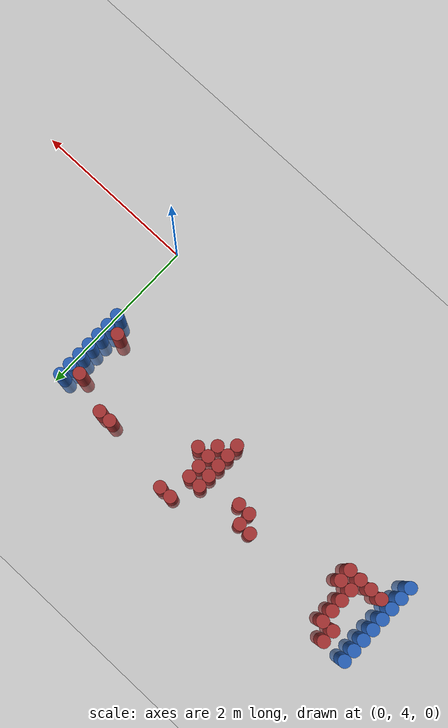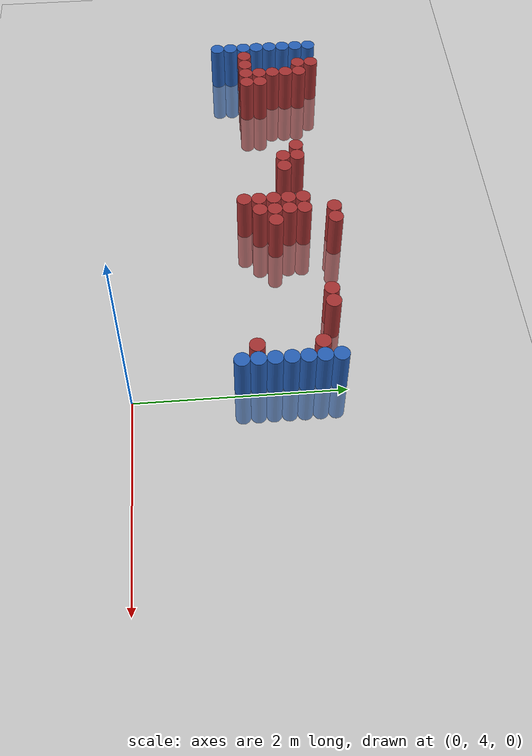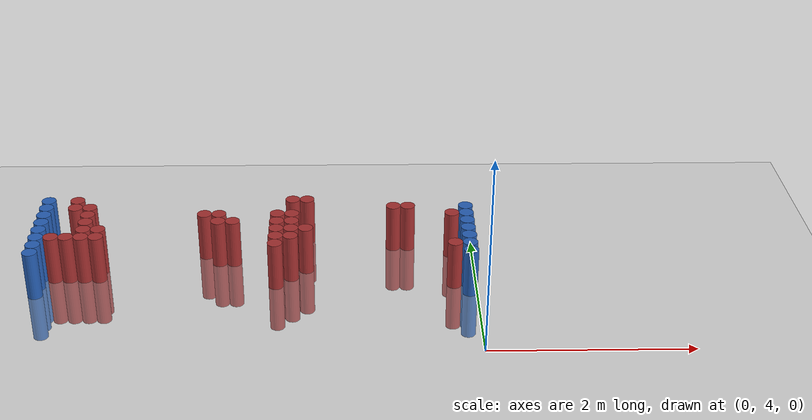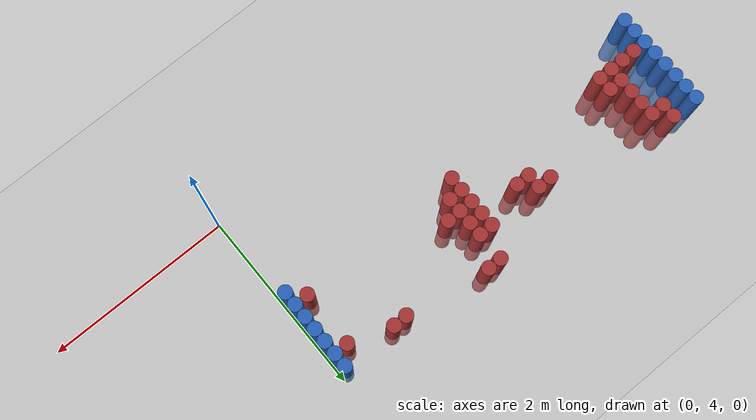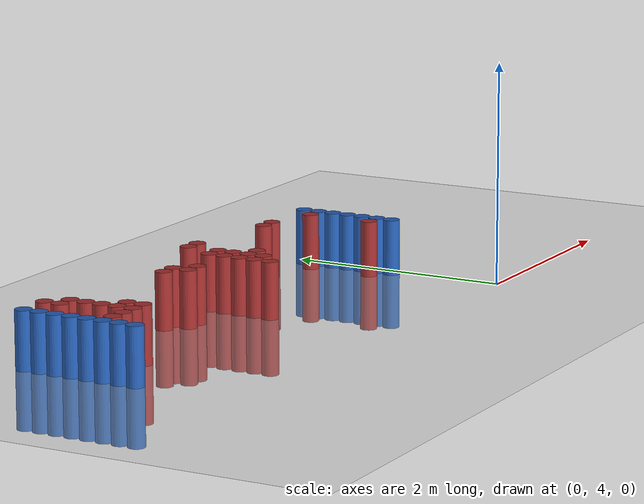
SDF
<sdf version="1.6">
 <world name="default">
  <model name="ground_plane">
   <static>1</static>
   <link name="link">
    <collision name="collision">
     <geometry><plane><normal>0 0 1</normal><size>100 100</size></plane></geometry>
     <surface><friction><ode><mu>100</mu><mu2>50</mu2></ode></friction></surface>
    </collision>
    <visual name="visual">
     <cast_shadows>0</cast_shadows>
     <geometry><plane><normal>0 0 1</normal><size>100 100</size></plane></geometry>
     <material>
      <script><uri>file://media/materials/scripts/gazebo.material</uri><name>Gazebo/Grey</name></script>
     </material>
    </visual>
   </link>
  </model>
  <model name="unit_cylinder_94">
   <static>1</static>
   <pose>-0.075000 5.025000 0.000000 0.000000 0.000000 0.000000</pose>
   <link name="link">
    <inertial>
     <mass>1</mass>
     <inertia><ixx>0.145833</ixx><ixy>0</ixy><ixz>0</ixz><iyy>0.145833</iyy><iyz>0</iyz><izz>0.125</izz></inertia>
    </inertial>
    <collision name="collision">
     <geometry><cylinder><radius>0.075000</radius><length>1</length></cylinder></geometry>
    </collision>
    <visual name="visual">
     <geometry><cylinder><radius>0.075000</radius><length>1</length></cylinder></geometry>
     <material>
      <ambient>0.152000 0.379000 0.720000 1</ambient>
      <diffuse>0.152000 0.379000 0.720000 1</diffuse>
     </material>
     <material>
      <script><name>Gazebo/Grey</name><uri>file://media/materials/scripts/gazebo.material</uri></script>
     </material>
    </visual>
   </link>
  </model>
  <model name="unit_cylinder_95">
   <static>1</static>
   <pose>-4.425000 5.025000 0.000000 0.000000 0.000000 0.000000</pose>
   <link name="link">
    <inertial>
     <mass>1</mass>
     <inertia><ixx>0.145833</ixx><ixy>0</ixy><ixz>0</ixz><iyy>0.145833</iyy><iyz>0</iyz><izz>0.125</izz></inertia>
    </inertial>
    <collision name="collision">
     <geometry><cylinder><radius>0.075000</radius><length>1</length></cylinder></geometry>
    </collision>
    <visual name="visual">
     <geometry><cylinder><radius>0.075000</radius><length>1</length></cylinder></geometry>
     <material>
      <ambient>0.152000 0.379000 0.720000 1</ambient>
      <diffuse>0.152000 0.379000 0.720000 1</diffuse>
     </material>
     <material>
      <script><name>Gazebo/Grey</name><uri>file://media/materials/scripts/gazebo.material</uri></script>
     </material>
    </visual>
   </link>
  </model>
  <model name="unit_cylinder_96">
   <static>1</static>
   <pose>-4.425000 5.175000 0.000000 0.000000 0.000000 0.000000</pose>
   <link name="link">
    <inertial>
     <mass>1</mass>
     <inertia><ixx>0.145833</ixx><ixy>0</ixy><ixz>0</ixz><iyy>0.145833</iyy><iyz>0</iyz><izz>0.125</izz></inertia>
    </inertial>
    <collision name="collision">
     <geometry><cylinder><radius>0.075000</radius><length>1</length></cylinder></geometry>
    </collision>
    <visual name="visual">
     <geometry><cylinder><radius>0.075000</radius><length>1</length></cylinder></geometry>
     <material>
      <ambient>0.152000 0.379000 0.720000 1</ambient>
      <diffuse>0.152000 0.379000 0.720000 1</diffuse>
     </material>
     <material>
      <script><name>Gazebo/Grey</name><uri>file://media/materials/scripts/gazebo.material</uri></script>
     </material>
    </visual>
   </link>
  </model>
  <model name="unit_cylinder_97">
   <static>1</static>
   <pose>-4.425000 5.325000 0.000000 0.000000 0.000000 0.000000</pose>
   <link name="link">
    <inertial>
     <mass>1</mass>
     <inertia><ixx>0.145833</ixx><ixy>0</ixy><ixz>0</ixz><iyy>0.145833</iyy><iyz>0</iyz><izz>0.125</izz></inertia>
    </inertial>
    <collision name="collision">
     <geometry><cylinder><radius>0.075000</radius><length>1</length></cylinder></geometry>
    </collision>
    <visual name="visual">
     <geometry><cylinder><radius>0.075000</radius><length>1</length></cylinder></geometry>
     <material>
      <ambient>0.152000 0.379000 0.720000 1</ambient>
      <diffuse>0.152000 0.379000 0.720000 1</diffuse>
     </material>
     <material>
      <script><name>Gazebo/Grey</name><uri>file://media/materials/scripts/gazebo.material</uri></script>
     </material>
    </visual>
   </link>
  </model>
  <model name="unit_cylinder_98">
   <static>1</static>
   <pose>-4.425000 5.475000 0.000000 0.000000 0.000000 0.000000</pose>
   <link name="link">
    <inertial>
     <mass>1</mass>
     <inertia><ixx>0.145833</ixx><ixy>0</ixy><ixz>0</ixz><iyy>0.145833</iyy><iyz>0</iyz><izz>0.125</izz></inertia>
    </inertial>
    <collision name="collision">
     <geometry><cylinder><radius>0.075000</radius><length>1</length></cylinder></geometry>
    </collision>
    <visual name="visual">
     <geometry><cylinder><radius>0.075000</radius><length>1</length></cylinder></geometry>
     <material>
      <ambient>0.152000 0.379000 0.720000 1</ambient>
      <diffuse>0.152000 0.379000 0.720000 1</diffuse>
     </material>
     <material>
      <script><name>Gazebo/Grey</name><uri>file://media/materials/scripts/gazebo.material</uri></script>
     </material>
    </visual>
   </link>
  </model>
  <model name="unit_cylinder_99">
   <static>1</static>
   <pose>-4.425000 5.625000 0.000000 0.000000 0.000000 0.000000</pose>
   <link name="link">
    <inertial>
     <mass>1</mass>
     <inertia><ixx>0.145833</ixx><ixy>0</ixy><ixz>0</ixz><iyy>0.145833</iyy><iyz>0</iyz><izz>0.125</izz></inertia>
    </inertial>
    <collision name="collision">
     <geometry><cylinder><radius>0.075000</radius><length>1</length></cylinder></geometry>
    </collision>
    <visual name="visual">
     <geometry><cylinder><radius>0.075000</radius><length>1</length></cylinder></geometry>
     <material>
      <ambient>0.152000 0.379000 0.720000 1</ambient>
      <diffuse>0.152000 0.379000 0.720000 1</diffuse>
     </material>
     <material>
      <script><name>Gazebo/Grey</name><uri>file://media/materials/scripts/gazebo.material</uri></script>
     </material>
    </visual>
   </link>
  </model>
  <model name="unit_cylinder_100">
   <static>1</static>
   <pose>-4.425000 5.775000 0.000000 0.000000 0.000000 0.000000</pose>
   <link name="link">
    <inertial>
     <mass>1</mass>
     <inertia><ixx>0.145833</ixx><ixy>0</ixy><ixz>0</ixz><iyy>0.145833</iyy><iyz>0</iyz><izz>0.125</izz></inertia>
    </inertial>
    <collision name="collision">
     <geometry><cylinder><radius>0.075000</radius><length>1</length></cylinder></geometry>
    </collision>
    <visual name="visual">
     <geometry><cylinder><radius>0.075000</radius><length>1</length></cylinder></geometry>
     <material>
      <ambient>0.152000 0.379000 0.720000 1</ambient>
      <diffuse>0.152000 0.379000 0.720000 1</diffuse>
     </material>
     <material>
      <script><name>Gazebo/Grey</name><uri>file://media/materials/scripts/gazebo.material</uri></script>
     </material>
    </visual>
   </link>
  </model>
  <model name="unit_cylinder_101">
   <static>1</static>
   <pose>-4.425000 5.925000 0.000000 0.000000 0.000000 0.000000</pose>
   <link name="link">
    <inertial>
     <mass>1</mass>
     <inertia><ixx>0.145833</ixx><ixy>0</ixy><ixz>0</ixz><iyy>0.145833</iyy><iyz>0</iyz><izz>0.125</izz></inertia>
    </inertial>
    <collision name="collision">
     <geometry><cylinder><radius>0.075000</radius><length>1</length></cylinder></geometry>
    </collision>
    <visual name="visual">
     <geometry><cylinder><radius>0.075000</radius><length>1</length></cylinder></geometry>
     <material>
      <ambient>0.152000 0.379000 0.720000 1</ambient>
      <diffuse>0.152000 0.379000 0.720000 1</diffuse>
     </material>
     <material>
      <script><name>Gazebo/Grey</name><uri>file://media/materials/scripts/gazebo.material</uri></script>
     </material>
    </visual>
   </link>
  </model>
  <model name="unit_cylinder_102">
   <static>1</static>
   <pose>-4.425000 6.075000 0.000000 0.000000 0.000000 0.000000</pose>
   <link name="link">
    <inertial>
     <mass>1</mass>
     <inertia><ixx>0.145833</ixx><ixy>0</ixy><ixz>0</ixz><iyy>0.145833</iyy><iyz>0</iyz><izz>0.125</izz></inertia>
    </inertial>
    <collision name="collision">
     <geometry><cylinder><radius>0.075000</radius><length>1</length></cylinder></geometry>
    </collision>
    <visual name="visual">
     <geometry><cylinder><radius>0.075000</radius><length>1</length></cylinder></geometry>
     <material>
      <ambient>0.152000 0.379000 0.720000 1</ambient>
      <diffuse>0.152000 0.379000 0.720000 1</diffuse>
     </material>
     <material>
      <script><name>Gazebo/Grey</name><uri>file://media/materials/scripts/gazebo.material</uri></script>
     </material>
    </visual>
   </link>
  </model>
  <model name="unit_cylinder_126">
   <static>1</static>
   <pose>-4.275000 5.325000 0.000000 0.000000 0.000000 0.000000</pose>
   <link name="link">
    <inertial>
     <mass>1</mass>
     <inertia><ixx>0.145833</ixx><ixy>0</ixy><ixz>0</ixz><iyy>0.145833</iyy><iyz>0</iyz><izz>0.125</izz></inertia>
    </inertial>
    <collision name="collision">
     <geometry><cylinder><radius>0.075000</radius><length>1</length></cylinder></geometry>
    </collision>
    <visual name="visual">
     <geometry><cylinder><radius>0.075000</radius><length>1</length></cylinder></geometry>
     <material>
      <ambient>0.648000 0.192000 0.192000 1</ambient>
      <diffuse>0.648000 0.192000 0.192000 1</diffuse>
     </material>
     <material>
      <script><name>Gazebo/Grey</name><uri>file://media/materials/scripts/gazebo.material</uri></script>
     </material>
    </visual>
   </link>
  </model>
  <model name="unit_cylinder_135">
   <static>1</static>
   <pose>-4.125000 5.325000 0.000000 0.000000 0.000000 0.000000</pose>
   <link name="link">
    <inertial>
     <mass>1</mass>
     <inertia><ixx>0.145833</ixx><ixy>0</ixy><ixz>0</ixz><iyy>0.145833</iyy><iyz>0</iyz><izz>0.125</izz></inertia>
    </inertial>
    <collision name="collision">
     <geometry><cylinder><radius>0.075000</radius><length>1</length></cylinder></geometry>
    </collision>
    <visual name="visual">
     <geometry><cylinder><radius>0.075000</radius><length>1</length></cylinder></geometry>
     <material>
      <ambient>0.648000 0.192000 0.192000 1</ambient>
      <diffuse>0.648000 0.192000 0.192000 1</diffuse>
     </material>
     <material>
      <script><name>Gazebo/Grey</name><uri>file://media/materials/scripts/gazebo.material</uri></script>
     </material>
    </visual>
   </link>
  </model>
  <model name="unit_cylinder_136">
   <static>1</static>
   <pose>-4.125000 5.925000 0.000000 0.000000 0.000000 0.000000</pose>
   <link name="link">
    <inertial>
     <mass>1</mass>
     <inertia><ixx>0.145833</ixx><ixy>0</ixy><ixz>0</ixz><iyy>0.145833</iyy><iyz>0</iyz><izz>0.125</izz></inertia>
    </inertial>
    <collision name="collision">
     <geometry><cylinder><radius>0.075000</radius><length>1</length></cylinder></geometry>
    </collision>
    <visual name="visual">
     <geometry><cylinder><radius>0.075000</radius><length>1</length></cylinder></geometry>
     <material>
      <ambient>0.648000 0.192000 0.192000 1</ambient>
      <diffuse>0.648000 0.192000 0.192000 1</diffuse>
     </material>
     <material>
      <script><name>Gazebo/Grey</name><uri>file://media/materials/scripts/gazebo.material</uri></script>
     </material>
    </visual>
   </link>
  </model>
  <model name="unit_cylinder_137">
   <static>1</static>
   <pose>-4.125000 6.075000 0.000000 0.000000 0.000000 0.000000</pose>
   <link name="link">
    <inertial>
     <mass>1</mass>
     <inertia><ixx>0.145833</ixx><ixy>0</ixy><ixz>0</ixz><iyy>0.145833</iyy><iyz>0</iyz><izz>0.125</izz></inertia>
    </inertial>
    <collision name="collision">
     <geometry><cylinder><radius>0.075000</radius><length>1</length></cylinder></geometry>
    </collision>
    <visual name="visual">
     <geometry><cylinder><radius>0.075000</radius><length>1</length></cylinder></geometry>
     <material>
      <ambient>0.648000 0.192000 0.192000 1</ambient>
      <diffuse>0.648000 0.192000 0.192000 1</diffuse>
     </material>
     <material>
      <script><name>Gazebo/Grey</name><uri>file://media/materials/scripts/gazebo.material</uri></script>
     </material>
    </visual>
   </link>
  </model>
  <model name="unit_cylinder_145">
   <static>1</static>
   <pose>-3.975000 5.325000 0.000000 0.000000 0.000000 0.000000</pose>
   <link name="link">
    <inertial>
     <mass>1</mass>
     <inertia><ixx>0.145833</ixx><ixy>0</ixy><ixz>0</ixz><iyy>0.145833</iyy><iyz>0</iyz><izz>0.125</izz></inertia>
    </inertial>
    <collision name="collision">
     <geometry><cylinder><radius>0.075000</radius><length>1</length></cylinder></geometry>
    </collision>
    <visual name="visual">
     <geometry><cylinder><radius>0.075000</radius><length>1</length></cylinder></geometry>
     <material>
      <ambient>0.648000 0.192000 0.192000 1</ambient>
      <diffuse>0.648000 0.192000 0.192000 1</diffuse>
     </material>
     <material>
      <script><name>Gazebo/Grey</name><uri>file://media/materials/scripts/gazebo.material</uri></script>
     </material>
    </visual>
   </link>
  </model>
  <model name="unit_cylinder_146">
   <static>1</static>
   <pose>-3.975000 5.475000 0.000000 0.000000 0.000000 0.000000</pose>
   <link name="link">
    <inertial>
     <mass>1</mass>
     <inertia><ixx>0.145833</ixx><ixy>0</ixy><ixz>0</ixz><iyy>0.145833</iyy><iyz>0</iyz><izz>0.125</izz></inertia>
    </inertial>
    <collision name="collision">
     <geometry><cylinder><radius>0.075000</radius><length>1</length></cylinder></geometry>
    </collision>
    <visual name="visual">
     <geometry><cylinder><radius>0.075000</radius><length>1</length></cylinder></geometry>
     <material>
      <ambient>0.648000 0.192000 0.192000 1</ambient>
      <diffuse>0.648000 0.192000 0.192000 1</diffuse>
     </material>
     <material>
      <script><name>Gazebo/Grey</name><uri>file://media/materials/scripts/gazebo.material</uri></script>
     </material>
    </visual>
   </link>
  </model>
  <model name="unit_cylinder_147">
   <static>1</static>
   <pose>-3.975000 5.625000 0.000000 0.000000 0.000000 0.000000</pose>
   <link name="link">
    <inertial>
     <mass>1</mass>
     <inertia><ixx>0.145833</ixx><ixy>0</ixy><ixz>0</ixz><iyy>0.145833</iyy><iyz>0</iyz><izz>0.125</izz></inertia>
    </inertial>
    <collision name="collision">
     <geometry><cylinder><radius>0.075000</radius><length>1</length></cylinder></geometry>
    </collision>
    <visual name="visual">
     <geometry><cylinder><radius>0.075000</radius><length>1</length></cylinder></geometry>
     <material>
      <ambient>0.648000 0.192000 0.192000 1</ambient>
      <diffuse>0.648000 0.192000 0.192000 1</diffuse>
     </material>
     <material>
      <script><name>Gazebo/Grey</name><uri>file://media/materials/scripts/gazebo.material</uri></script>
     </material>
    </visual>
   </link>
  </model>
  <model name="unit_cylinder_148">
   <static>1</static>
   <pose>-3.975000 5.775000 0.000000 0.000000 0.000000 0.000000</pose>
   <link name="link">
    <inertial>
     <mass>1</mass>
     <inertia><ixx>0.145833</ixx><ixy>0</ixy><ixz>0</ixz><iyy>0.145833</iyy><iyz>0</iyz><izz>0.125</izz></inertia>
    </inertial>
    <collision name="collision">
     <geometry><cylinder><radius>0.075000</radius><length>1</length></cylinder></geometry>
    </collision>
    <visual name="visual">
     <geometry><cylinder><radius>0.075000</radius><length>1</length></cylinder></geometry>
     <material>
      <ambient>0.648000 0.192000 0.192000 1</ambient>
      <diffuse>0.648000 0.192000 0.192000 1</diffuse>
     </material>
     <material>
      <script><name>Gazebo/Grey</name><uri>file://media/materials/scripts/gazebo.material</uri></script>
     </material>
    </visual>
   </link>
  </model>
  <model name="unit_cylinder_149">
   <static>1</static>
   <pose>-3.975000 5.925000 0.000000 0.000000 0.000000 0.000000</pose>
   <link name="link">
    <inertial>
     <mass>1</mass>
     <inertia><ixx>0.145833</ixx><ixy>0</ixy><ixz>0</ixz><iyy>0.145833</iyy><iyz>0</iyz><izz>0.125</izz></inertia>
    </inertial>
    <collision name="collision">
     <geometry><cylinder><radius>0.075000</radius><length>1</length></cylinder></geometry>
    </collision>
    <visual name="visual">
     <geometry><cylinder><radius>0.075000</radius><length>1</length></cylinder></geometry>
     <material>
      <ambient>0.648000 0.192000 0.192000 1</ambient>
      <diffuse>0.648000 0.192000 0.192000 1</diffuse>
     </material>
     <material>
      <script><name>Gazebo/Grey</name><uri>file://media/materials/scripts/gazebo.material</uri></script>
     </material>
    </visual>
   </link>
  </model>
  <model name="unit_cylinder_156">
   <static>1</static>
   <pose>-3.825000 5.325000 0.000000 0.000000 0.000000 0.000000</pose>
   <link name="link">
    <inertial>
     <mass>1</mass>
     <inertia><ixx>0.145833</ixx><ixy>0</ixy><ixz>0</ixz><iyy>0.145833</iyy><iyz>0</iyz><izz>0.125</izz></inertia>
    </inertial>
    <collision name="collision">
     <geometry><cylinder><radius>0.075000</radius><length>1</length></cylinder></geometry>
    </collision>
    <visual name="visual">
     <geometry><cylinder><radius>0.075000</radius><length>1</length></cylinder></geometry>
     <material>
      <ambient>0.648000 0.192000 0.192000 1</ambient>
      <diffuse>0.648000 0.192000 0.192000 1</diffuse>
     </material>
     <material>
      <script><name>Gazebo/Grey</name><uri>file://media/materials/scripts/gazebo.material</uri></script>
     </material>
    </visual>
   </link>
  </model>
  <model name="unit_cylinder_157">
   <static>1</static>
   <pose>-3.825000 5.475000 0.000000 0.000000 0.000000 0.000000</pose>
   <link name="link">
    <inertial>
     <mass>1</mass>
     <inertia><ixx>0.145833</ixx><ixy>0</ixy><ixz>0</ixz><iyy>0.145833</iyy><iyz>0</iyz><izz>0.125</izz></inertia>
    </inertial>
    <collision name="collision">
     <geometry><cylinder><radius>0.075000</radius><length>1</length></cylinder></geometry>
    </collision>
    <visual name="visual">
     <geometry><cylinder><radius>0.075000</radius><length>1</length></cylinder></geometry>
     <material>
      <ambient>0.648000 0.192000 0.192000 1</ambient>
      <diffuse>0.648000 0.192000 0.192000 1</diffuse>
     </material>
     <material>
      <script><name>Gazebo/Grey</name><uri>file://media/materials/scripts/gazebo.material</uri></script>
     </material>
    </visual>
   </link>
  </model>
  <model name="unit_cylinder_181">
   <static>1</static>
   <pose>-2.775000 5.775000 0.000000 0.000000 0.000000 0.000000</pose>
   <link name="link">
    <inertial>
     <mass>1</mass>
     <inertia><ixx>0.145833</ixx><ixy>0</ixy><ixz>0</ixz><iyy>0.145833</iyy><iyz>0</iyz><izz>0.125</izz></inertia>
    </inertial>
    <collision name="collision">
     <geometry><cylinder><radius>0.075000</radius><length>1</length></cylinder></geometry>
    </collision>
    <visual name="visual">
     <geometry><cylinder><radius>0.075000</radius><length>1</length></cylinder></geometry>
     <material>
      <ambient>0.648000 0.192000 0.192000 1</ambient>
      <diffuse>0.648000 0.192000 0.192000 1</diffuse>
     </material>
     <material>
      <script><name>Gazebo/Grey</name><uri>file://media/materials/scripts/gazebo.material</uri></script>
     </material>
    </visual>
   </link>
  </model>
  <model name="unit_cylinder_182">
   <static>1</static>
   <pose>-2.625000 5.625000 0.000000 0.000000 0.000000 0.000000</pose>
   <link name="link">
    <inertial>
     <mass>1</mass>
     <inertia><ixx>0.145833</ixx><ixy>0</ixy><ixz>0</ixz><iyy>0.145833</iyy><iyz>0</iyz><izz>0.125</izz></inertia>
    </inertial>
    <collision name="collision">
     <geometry><cylinder><radius>0.075000</radius><length>1</length></cylinder></geometry>
    </collision>
    <visual name="visual">
     <geometry><cylinder><radius>0.075000</radius><length>1</length></cylinder></geometry>
     <material>
      <ambient>0.648000 0.192000 0.192000 1</ambient>
      <diffuse>0.648000 0.192000 0.192000 1</diffuse>
     </material>
     <material>
      <script><name>Gazebo/Grey</name><uri>file://media/materials/scripts/gazebo.material</uri></script>
     </material>
    </visual>
   </link>
  </model>
  <model name="unit_cylinder_183">
   <static>1</static>
   <pose>-2.625000 5.775000 0.000000 0.000000 0.000000 0.000000</pose>
   <link name="link">
    <inertial>
     <mass>1</mass>
     <inertia><ixx>0.145833</ixx><ixy>0</ixy><ixz>0</ixz><iyy>0.145833</iyy><iyz>0</iyz><izz>0.125</izz></inertia>
    </inertial>
    <collision name="collision">
     <geometry><cylinder><radius>0.075000</radius><length>1</length></cylinder></geometry>
    </collision>
    <visual name="visual">
     <geometry><cylinder><radius>0.075000</radius><length>1</length></cylinder></geometry>
     <material>
      <ambient>0.648000 0.192000 0.192000 1</ambient>
      <diffuse>0.648000 0.192000 0.192000 1</diffuse>
     </material>
     <material>
      <script><name>Gazebo/Grey</name><uri>file://media/materials/scripts/gazebo.material</uri></script>
     </material>
    </visual>
   </link>
  </model>
  <model name="unit_cylinder_185">
   <static>1</static>
   <pose>-2.475000 5.625000 0.000000 0.000000 0.000000 0.000000</pose>
   <link name="link">
    <inertial>
     <mass>1</mass>
     <inertia><ixx>0.145833</ixx><ixy>0</ixy><ixz>0</ixz><iyy>0.145833</iyy><iyz>0</iyz><izz>0.125</izz></inertia>
    </inertial>
    <collision name="collision">
     <geometry><cylinder><radius>0.075000</radius><length>1</length></cylinder></geometry>
    </collision>
    <visual name="visual">
     <geometry><cylinder><radius>0.075000</radius><length>1</length></cylinder></geometry>
     <material>
      <ambient>0.648000 0.192000 0.192000 1</ambient>
      <diffuse>0.648000 0.192000 0.192000 1</diffuse>
     </material>
     <material>
      <script><name>Gazebo/Grey</name><uri>file://media/materials/scripts/gazebo.material</uri></script>
     </material>
    </visual>
   </link>
  </model>
  <model name="unit_cylinder_194">
   <static>1</static>
   <pose>-2.025000 5.175000 0.000000 0.000000 0.000000 0.000000</pose>
   <link name="link">
    <inertial>
     <mass>1</mass>
     <inertia><ixx>0.145833</ixx><ixy>0</ixy><ixz>0</ixz><iyy>0.145833</iyy><iyz>0</iyz><izz>0.125</izz></inertia>
    </inertial>
    <collision name="collision">
     <geometry><cylinder><radius>0.075000</radius><length>1</length></cylinder></geometry>
    </collision>
    <visual name="visual">
     <geometry><cylinder><radius>0.075000</radius><length>1</length></cylinder></geometry>
     <material>
      <ambient>0.648000 0.192000 0.192000 1</ambient>
      <diffuse>0.648000 0.192000 0.192000 1</diffuse>
     </material>
     <material>
      <script><name>Gazebo/Grey</name><uri>file://media/materials/scripts/gazebo.material</uri></script>
     </material>
    </visual>
   </link>
  </model>
  <model name="unit_cylinder_195">
   <static>1</static>
   <pose>-2.025000 5.325000 0.000000 0.000000 0.000000 0.000000</pose>
   <link name="link">
    <inertial>
     <mass>1</mass>
     <inertia><ixx>0.145833</ixx><ixy>0</ixy><ixz>0</ixz><iyy>0.145833</iyy><iyz>0</iyz><izz>0.125</izz></inertia>
    </inertial>
    <collision name="collision">
     <geometry><cylinder><radius>0.075000</radius><length>1</length></cylinder></geometry>
    </collision>
    <visual name="visual">
     <geometry><cylinder><radius>0.075000</radius><length>1</length></cylinder></geometry>
     <material>
      <ambient>0.648000 0.192000 0.192000 1</ambient>
      <diffuse>0.648000 0.192000 0.192000 1</diffuse>
     </material>
     <material>
      <script><name>Gazebo/Grey</name><uri>file://media/materials/scripts/gazebo.material</uri></script>
     </material>
    </visual>
   </link>
  </model>
  <model name="unit_cylinder_196">
   <static>1</static>
   <pose>-2.025000 5.475000 0.000000 0.000000 0.000000 0.000000</pose>
   <link name="link">
    <inertial>
     <mass>1</mass>
     <inertia><ixx>0.145833</ixx><ixy>0</ixy><ixz>0</ixz><iyy>0.145833</iyy><iyz>0</iyz><izz>0.125</izz></inertia>
    </inertial>
    <collision name="collision">
     <geometry><cylinder><radius>0.075000</radius><length>1</length></cylinder></geometry>
    </collision>
    <visual name="visual">
     <geometry><cylinder><radius>0.075000</radius><length>1</length></cylinder></geometry>
     <material>
      <ambient>0.648000 0.192000 0.192000 1</ambient>
      <diffuse>0.648000 0.192000 0.192000 1</diffuse>
     </material>
     <material>
      <script><name>Gazebo/Grey</name><uri>file://media/materials/scripts/gazebo.material</uri></script>
     </material>
    </visual>
   </link>
  </model>
  <model name="unit_cylinder_197">
   <static>1</static>
   <pose>-2.025000 5.625000 0.000000 0.000000 0.000000 0.000000</pose>
   <link name="link">
    <inertial>
     <mass>1</mass>
     <inertia><ixx>0.145833</ixx><ixy>0</ixy><ixz>0</ixz><iyy>0.145833</iyy><iyz>0</iyz><izz>0.125</izz></inertia>
    </inertial>
    <collision name="collision">
     <geometry><cylinder><radius>0.075000</radius><length>1</length></cylinder></geometry>
    </collision>
    <visual name="visual">
     <geometry><cylinder><radius>0.075000</radius><length>1</length></cylinder></geometry>
     <material>
      <ambient>0.648000 0.192000 0.192000 1</ambient>
      <diffuse>0.648000 0.192000 0.192000 1</diffuse>
     </material>
     <material>
      <script><name>Gazebo/Grey</name><uri>file://media/materials/scripts/gazebo.material</uri></script>
     </material>
    </visual>
   </link>
  </model>
  <model name="unit_cylinder_198">
   <static>1</static>
   <pose>-2.025000 5.775000 0.000000 0.000000 0.000000 0.000000</pose>
   <link name="link">
    <inertial>
     <mass>1</mass>
     <inertia><ixx>0.145833</ixx><ixy>0</ixy><ixz>0</ixz><iyy>0.145833</iyy><iyz>0</iyz><izz>0.125</izz></inertia>
    </inertial>
    <collision name="collision">
     <geometry><cylinder><radius>0.075000</radius><length>1</length></cylinder></geometry>
    </collision>
    <visual name="visual">
     <geometry><cylinder><radius>0.075000</radius><length>1</length></cylinder></geometry>
     <material>
      <ambient>0.648000 0.192000 0.192000 1</ambient>
      <diffuse>0.648000 0.192000 0.192000 1</diffuse>
     </material>
     <material>
      <script><name>Gazebo/Grey</name><uri>file://media/materials/scripts/gazebo.material</uri></script>
     </material>
    </visual>
   </link>
  </model>
  <model name="unit_cylinder_201">
   <static>1</static>
   <pose>-1.875000 5.325000 0.000000 0.000000 0.000000 0.000000</pose>
   <link name="link">
    <inertial>
     <mass>1</mass>
     <inertia><ixx>0.145833</ixx><ixy>0</ixy><ixz>0</ixz><iyy>0.145833</iyy><iyz>0</iyz><izz>0.125</izz></inertia>
    </inertial>
    <collision name="collision">
     <geometry><cylinder><radius>0.075000</radius><length>1</length></cylinder></geometry>
    </collision>
    <visual name="visual">
     <geometry><cylinder><radius>0.075000</radius><length>1</length></cylinder></geometry>
     <material>
      <ambient>0.648000 0.192000 0.192000 1</ambient>
      <diffuse>0.648000 0.192000 0.192000 1</diffuse>
     </material>
     <material>
      <script><name>Gazebo/Grey</name><uri>file://media/materials/scripts/gazebo.material</uri></script>
     </material>
    </visual>
   </link>
  </model>
  <model name="unit_cylinder_202">
   <static>1</static>
   <pose>-1.875000 5.475000 0.000000 0.000000 0.000000 0.000000</pose>
   <link name="link">
    <inertial>
     <mass>1</mass>
     <inertia><ixx>0.145833</ixx><ixy>0</ixy><ixz>0</ixz><iyy>0.145833</iyy><iyz>0</iyz><izz>0.125</izz></inertia>
    </inertial>
    <collision name="collision">
     <geometry><cylinder><radius>0.075000</radius><length>1</length></cylinder></geometry>
    </collision>
    <visual name="visual">
     <geometry><cylinder><radius>0.075000</radius><length>1</length></cylinder></geometry>
     <material>
      <ambient>0.648000 0.192000 0.192000 1</ambient>
      <diffuse>0.648000 0.192000 0.192000 1</diffuse>
     </material>
     <material>
      <script><name>Gazebo/Grey</name><uri>file://media/materials/scripts/gazebo.material</uri></script>
     </material>
    </visual>
   </link>
  </model>
  <model name="unit_cylinder_203">
   <static>1</static>
   <pose>-1.875000 5.625000 0.000000 0.000000 0.000000 0.000000</pose>
   <link name="link">
    <inertial>
     <mass>1</mass>
     <inertia><ixx>0.145833</ixx><ixy>0</ixy><ixz>0</ixz><iyy>0.145833</iyy><iyz>0</iyz><izz>0.125</izz></inertia>
    </inertial>
    <collision name="collision">
     <geometry><cylinder><radius>0.075000</radius><length>1</length></cylinder></geometry>
    </collision>
    <visual name="visual">
     <geometry><cylinder><radius>0.075000</radius><length>1</length></cylinder></geometry>
     <material>
      <ambient>0.648000 0.192000 0.192000 1</ambient>
      <diffuse>0.648000 0.192000 0.192000 1</diffuse>
     </material>
     <material>
      <script><name>Gazebo/Grey</name><uri>file://media/materials/scripts/gazebo.material</uri></script>
     </material>
    </visual>
   </link>
  </model>
  <model name="unit_cylinder_204">
   <static>1</static>
   <pose>-1.875000 5.775000 0.000000 0.000000 0.000000 0.000000</pose>
   <link name="link">
    <inertial>
     <mass>1</mass>
     <inertia><ixx>0.145833</ixx><ixy>0</ixy><ixz>0</ixz><iyy>0.145833</iyy><iyz>0</iyz><izz>0.125</izz></inertia>
    </inertial>
    <collision name="collision">
     <geometry><cylinder><radius>0.075000</radius><length>1</length></cylinder></geometry>
    </collision>
    <visual name="visual">
     <geometry><cylinder><radius>0.075000</radius><length>1</length></cylinder></geometry>
     <material>
      <ambient>0.648000 0.192000 0.192000 1</ambient>
      <diffuse>0.648000 0.192000 0.192000 1</diffuse>
     </material>
     <material>
      <script><name>Gazebo/Grey</name><uri>file://media/materials/scripts/gazebo.material</uri></script>
     </material>
    </visual>
   </link>
  </model>
  <model name="unit_cylinder_205">
   <static>1</static>
   <pose>-1.875000 6.075000 0.000000 0.000000 0.000000 0.000000</pose>
   <link name="link">
    <inertial>
     <mass>1</mass>
     <inertia><ixx>0.145833</ixx><ixy>0</ixy><ixz>0</ixz><iyy>0.145833</iyy><iyz>0</iyz><izz>0.125</izz></inertia>
    </inertial>
    <collision name="collision">
     <geometry><cylinder><radius>0.075000</radius><length>1</length></cylinder></geometry>
    </collision>
    <visual name="visual">
     <geometry><cylinder><radius>0.075000</radius><length>1</length></cylinder></geometry>
     <material>
      <ambient>0.648000 0.192000 0.192000 1</ambient>
      <diffuse>0.648000 0.192000 0.192000 1</diffuse>
     </material>
     <material>
      <script><name>Gazebo/Grey</name><uri>file://media/materials/scripts/gazebo.material</uri></script>
     </material>
    </visual>
   </link>
  </model>
  <model name="unit_cylinder_207">
   <static>1</static>
   <pose>-1.725000 5.475000 0.000000 0.000000 0.000000 0.000000</pose>
   <link name="link">
    <inertial>
     <mass>1</mass>
     <inertia><ixx>0.145833</ixx><ixy>0</ixy><ixz>0</ixz><iyy>0.145833</iyy><iyz>0</iyz><izz>0.125</izz></inertia>
    </inertial>
    <collision name="collision">
     <geometry><cylinder><radius>0.075000</radius><length>1</length></cylinder></geometry>
    </collision>
    <visual name="visual">
     <geometry><cylinder><radius>0.075000</radius><length>1</length></cylinder></geometry>
     <material>
      <ambient>0.648000 0.192000 0.192000 1</ambient>
      <diffuse>0.648000 0.192000 0.192000 1</diffuse>
     </material>
     <material>
      <script><name>Gazebo/Grey</name><uri>file://media/materials/scripts/gazebo.material</uri></script>
     </material>
    </visual>
   </link>
  </model>
  <model name="unit_cylinder_208">
   <static>1</static>
   <pose>-1.725000 6.075000 0.000000 0.000000 0.000000 0.000000</pose>
   <link name="link">
    <inertial>
     <mass>1</mass>
     <inertia><ixx>0.145833</ixx><ixy>0</ixy><ixz>0</ixz><iyy>0.145833</iyy><iyz>0</iyz><izz>0.125</izz></inertia>
    </inertial>
    <collision name="collision">
     <geometry><cylinder><radius>0.075000</radius><length>1</length></cylinder></geometry>
    </collision>
    <visual name="visual">
     <geometry><cylinder><radius>0.075000</radius><length>1</length></cylinder></geometry>
     <material>
      <ambient>0.648000 0.192000 0.192000 1</ambient>
      <diffuse>0.648000 0.192000 0.192000 1</diffuse>
     </material>
     <material>
      <script><name>Gazebo/Grey</name><uri>file://media/materials/scripts/gazebo.material</uri></script>
     </material>
    </visual>
   </link>
  </model>
  <model name="unit_cylinder_225">
   <static>1</static>
   <pose>-0.825000 5.925000 0.000000 0.000000 0.000000 0.000000</pose>
   <link name="link">
    <inertial>
     <mass>1</mass>
     <inertia><ixx>0.145833</ixx><ixy>0</ixy><ixz>0</ixz><iyy>0.145833</iyy><iyz>0</iyz><izz>0.125</izz></inertia>
    </inertial>
    <collision name="collision">
     <geometry><cylinder><radius>0.075000</radius><length>1</length></cylinder></geometry>
    </collision>
    <visual name="visual">
     <geometry><cylinder><radius>0.075000</radius><length>1</length></cylinder></geometry>
     <material>
      <ambient>0.648000 0.192000 0.192000 1</ambient>
      <diffuse>0.648000 0.192000 0.192000 1</diffuse>
     </material>
     <material>
      <script><name>Gazebo/Grey</name><uri>file://media/materials/scripts/gazebo.material</uri></script>
     </material>
    </visual>
   </link>
  </model>
  <model name="unit_cylinder_231">
   <static>1</static>
   <pose>-0.675000 5.925000 0.000000 0.000000 0.000000 0.000000</pose>
   <link name="link">
    <inertial>
     <mass>1</mass>
     <inertia><ixx>0.145833</ixx><ixy>0</ixy><ixz>0</ixz><iyy>0.145833</iyy><iyz>0</iyz><izz>0.125</izz></inertia>
    </inertial>
    <collision name="collision">
     <geometry><cylinder><radius>0.075000</radius><length>1</length></cylinder></geometry>
    </collision>
    <visual name="visual">
     <geometry><cylinder><radius>0.075000</radius><length>1</length></cylinder></geometry>
     <material>
      <ambient>0.648000 0.192000 0.192000 1</ambient>
      <diffuse>0.648000 0.192000 0.192000 1</diffuse>
     </material>
     <material>
      <script><name>Gazebo/Grey</name><uri>file://media/materials/scripts/gazebo.material</uri></script>
     </material>
    </visual>
   </link>
  </model>
  <model name="unit_cylinder_235">
   <static>1</static>
   <pose>-0.225000 5.175000 0.000000 0.000000 0.000000 0.000000</pose>
   <link name="link">
    <inertial>
     <mass>1</mass>
     <inertia><ixx>0.145833</ixx><ixy>0</ixy><ixz>0</ixz><iyy>0.145833</iyy><iyz>0</iyz><izz>0.125</izz></inertia>
    </inertial>
    <collision name="collision">
     <geometry><cylinder><radius>0.075000</radius><length>1</length></cylinder></geometry>
    </collision>
    <visual name="visual">
     <geometry><cylinder><radius>0.075000</radius><length>1</length></cylinder></geometry>
     <material>
      <ambient>0.648000 0.192000 0.192000 1</ambient>
      <diffuse>0.648000 0.192000 0.192000 1</diffuse>
     </material>
     <material>
      <script><name>Gazebo/Grey</name><uri>file://media/materials/scripts/gazebo.material</uri></script>
     </material>
    </visual>
   </link>
  </model>
  <model name="unit_cylinder_236">
   <static>1</static>
   <pose>-0.225000 5.775000 0.000000 0.000000 0.000000 0.000000</pose>
   <link name="link">
    <inertial>
     <mass>1</mass>
     <inertia><ixx>0.145833</ixx><ixy>0</ixy><ixz>0</ixz><iyy>0.145833</iyy><iyz>0</iyz><izz>0.125</izz></inertia>
    </inertial>
    <collision name="collision">
     <geometry><cylinder><radius>0.075000</radius><length>1</length></cylinder></geometry>
    </collision>
    <visual name="visual">
     <geometry><cylinder><radius>0.075000</radius><length>1</length></cylinder></geometry>
     <material>
      <ambient>0.648000 0.192000 0.192000 1</ambient>
      <diffuse>0.648000 0.192000 0.192000 1</diffuse>
     </material>
     <material>
      <script><name>Gazebo/Grey</name><uri>file://media/materials/scripts/gazebo.material</uri></script>
     </material>
    </visual>
   </link>
  </model>
  <model name="unit_cylinder_250">
   <static>1</static>
   <pose>-0.075000 5.175000 0.000000 0.000000 0.000000 0.000000</pose>
   <link name="link">
    <inertial>
     <mass>1</mass>
     <inertia><ixx>0.145833</ixx><ixy>0</ixy><ixz>0</ixz><iyy>0.145833</iyy><iyz>0</iyz><izz>0.125</izz></inertia>
    </inertial>
    <collision name="collision">
     <geometry><cylinder><radius>0.075000</radius><length>1</length></cylinder></geometry>
    </collision>
    <visual name="visual">
     <geometry><cylinder><radius>0.075000</radius><length>1</length></cylinder></geometry>
     <material>
      <ambient>0.152000 0.379000 0.720000 1</ambient>
      <diffuse>0.152000 0.379000 0.720000 1</diffuse>
     </material>
     <material>
      <script><name>Gazebo/Grey</name><uri>file://media/materials/scripts/gazebo.material</uri></script>
     </material>
    </visual>
   </link>
  </model>
  <model name="unit_cylinder_251">
   <static>1</static>
   <pose>-0.075000 5.325000 0.000000 0.000000 0.000000 0.000000</pose>
   <link name="link">
    <inertial>
     <mass>1</mass>
     <inertia><ixx>0.145833</ixx><ixy>0</ixy><ixz>0</ixz><iyy>0.145833</iyy><iyz>0</iyz><izz>0.125</izz></inertia>
    </inertial>
    <collision name="collision">
     <geometry><cylinder><radius>0.075000</radius><length>1</length></cylinder></geometry>
    </collision>
    <visual name="visual">
     <geometry><cylinder><radius>0.075000</radius><length>1</length></cylinder></geometry>
     <material>
      <ambient>0.152000 0.379000 0.720000 1</ambient>
      <diffuse>0.152000 0.379000 0.720000 1</diffuse>
     </material>
     <material>
      <script><name>Gazebo/Grey</name><uri>file://media/materials/scripts/gazebo.material</uri></script>
     </material>
    </visual>
   </link>
  </model>
  <model name="unit_cylinder_252">
   <static>1</static>
   <pose>-0.075000 5.475000 0.000000 0.000000 0.000000 0.000000</pose>
   <link name="link">
    <inertial>
     <mass>1</mass>
     <inertia><ixx>0.145833</ixx><ixy>0</ixy><ixz>0</ixz><iyy>0.145833</iyy><iyz>0</iyz><izz>0.125</izz></inertia>
    </inertial>
    <collision name="collision">
     <geometry><cylinder><radius>0.075000</radius><length>1</length></cylinder></geometry>
    </collision>
    <visual name="visual">
     <geometry><cylinder><radius>0.075000</radius><length>1</length></cylinder></geometry>
     <material>
      <ambient>0.152000 0.379000 0.720000 1</ambient>
      <diffuse>0.152000 0.379000 0.720000 1</diffuse>
     </material>
     <material>
      <script><name>Gazebo/Grey</name><uri>file://media/materials/scripts/gazebo.material</uri></script>
     </material>
    </visual>
   </link>
  </model>
  <model name="unit_cylinder_253">
   <static>1</static>
   <pose>-0.075000 5.625000 0.000000 0.000000 0.000000 0.000000</pose>
   <link name="link">
    <inertial>
     <mass>1</mass>
     <inertia><ixx>0.145833</ixx><ixy>0</ixy><ixz>0</ixz><iyy>0.145833</iyy><iyz>0</iyz><izz>0.125</izz></inertia>
    </inertial>
    <collision name="collision">
     <geometry><cylinder><radius>0.075000</radius><length>1</length></cylinder></geometry>
    </collision>
    <visual name="visual">
     <geometry><cylinder><radius>0.075000</radius><length>1</length></cylinder></geometry>
     <material>
      <ambient>0.152000 0.379000 0.720000 1</ambient>
      <diffuse>0.152000 0.379000 0.720000 1</diffuse>
     </material>
     <material>
      <script><name>Gazebo/Grey</name><uri>file://media/materials/scripts/gazebo.material</uri></script>
     </material>
    </visual>
   </link>
  </model>
  <model name="unit_cylinder_254">
   <static>1</static>
   <pose>-0.075000 5.775000 0.000000 0.000000 0.000000 0.000000</pose>
   <link name="link">
    <inertial>
     <mass>1</mass>
     <inertia><ixx>0.145833</ixx><ixy>0</ixy><ixz>0</ixz><iyy>0.145833</iyy><iyz>0</iyz><izz>0.125</izz></inertia>
    </inertial>
    <collision name="collision">
     <geometry><cylinder><radius>0.075000</radius><length>1</length></cylinder></geometry>
    </collision>
    <visual name="visual">
     <geometry><cylinder><radius>0.075000</radius><length>1</length></cylinder></geometry>
     <material>
      <ambient>0.152000 0.379000 0.720000 1</ambient>
      <diffuse>0.152000 0.379000 0.720000 1</diffuse>
     </material>
     <material>
      <script><name>Gazebo/Grey</name><uri>file://media/materials/scripts/gazebo.material</uri></script>
     </material>
    </visual>
   </link>
  </model>
  <model name="unit_cylinder_255">
   <static>1</static>
   <pose>-0.075000 5.925000 0.000000 0.000000 0.000000 0.000000</pose>
   <link name="link">
    <inertial>
     <mass>1</mass>
     <inertia><ixx>0.145833</ixx><ixy>0</ixy><ixz>0</ixz><iyy>0.145833</iyy><iyz>0</iyz><izz>0.125</izz></inertia>
    </inertial>
    <collision name="collision">
     <geometry><cylinder><radius>0.075000</radius><length>1</length></cylinder></geometry>
    </collision>
    <visual name="visual">
     <geometry><cylinder><radius>0.075000</radius><length>1</length></cylinder></geometry>
     <material>
      <ambient>0.152000 0.379000 0.720000 1</ambient>
      <diffuse>0.152000 0.379000 0.720000 1</diffuse>
     </material>
     <material>
      <script><name>Gazebo/Grey</name><uri>file://media/materials/scripts/gazebo.material</uri></script>
     </material>
    </visual>
   </link>
  </model>
 </world>
</sdf>
